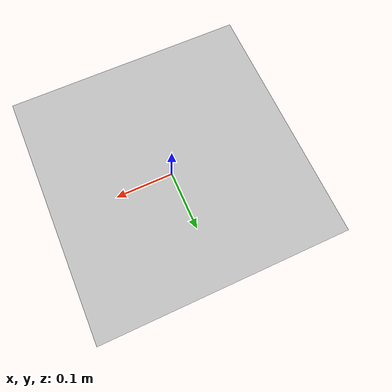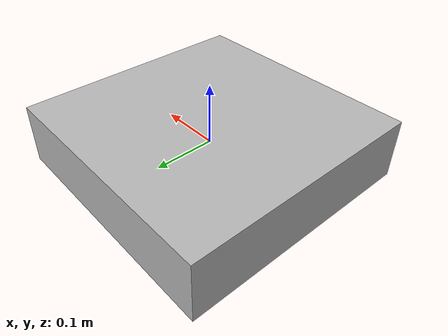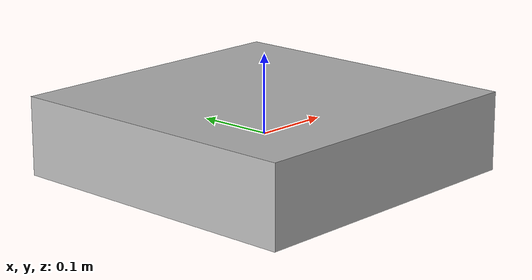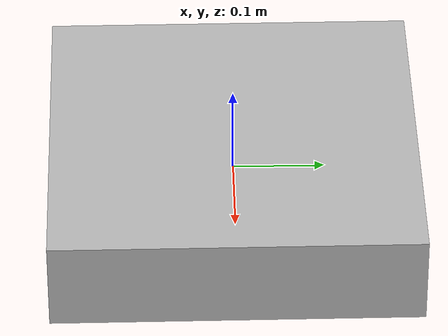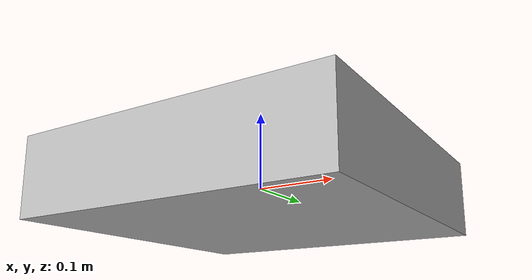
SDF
<?xml version="1.0"?>
<sdf version="1.9">
  <model name="quadcopter">
    <static>true</static>

    <!-- BASE -->
    <link name="base_link">
      <pose>0 0 0 0 0 0</pose>

      <inertial>
        <mass>1.5</mass>
        <inertia>
          <ixx>0.02</ixx>
          <iyy>0.02</iyy>
          <izz>0.04</izz>
        </inertia>
      </inertial>

      <collision name="collision">
        <geometry>
          <box><size>0.4 0.4 0.1</size></box>
        </geometry>
      </collision>

      <visual name="visual">
        <geometry>
          <box><size>0.4 0.4 0.1</size></box>
        </geometry>
      </visual>

      <!-- IMU -->
      <sensor name="imu" type="imu">
        <always_on>true</always_on>
        <update_rate>200</update_rate>
      </sensor>
    </link>

    <!-- ROTORS -->
    <link name="rotor_0">
      <inertial>
        <mass>0.01</mass>
        <inertia>
          <ixx>1e-6</ixx>
          <iyy>1e-6</iyy>
          <izz>1e-6</izz>
        </inertia>
      </inertial>
    </link>

    <link name="rotor_1">
      <inertial>
        <mass>0.01</mass>
        <inertia>
          <ixx>1e-6</ixx>
          <iyy>1e-6</iyy>
          <izz>1e-6</izz>
        </inertia>
      </inertial>
    </link>

    <link name="rotor_2">
      <inertial>
        <mass>0.01</mass>
        <inertia>
          <ixx>1e-6</ixx>
          <iyy>1e-6</iyy>
          <izz>1e-6</izz>
        </inertia>
      </inertial>
    </link>

    <link name="rotor_3">
      <inertial>
        <mass>0.01</mass>
        <inertia>
          <ixx>1e-6</ixx>
          <iyy>1e-6</iyy>
          <izz>1e-6</izz>
        </inertia>
      </inertial>
    </link>

    <joint name="rotor_0_joint" type="revolute">
      <parent>base_link</parent>
      <child>rotor_0</child>
      <pose>0.2  0.2 0 0 0 0</pose>
      <axis>
        <xyz>0 0 1</xyz>
        <limit>
          <lower>-1e16</lower>
          <upper>1e16</upper>
        </limit>
      </axis>
    </joint>

    <joint name="rotor_1_joint" type="revolute">
      <parent>base_link</parent>
      <child>rotor_1</child>
      <pose>-0.2  0.2 0 0 0 0</pose>
      <axis>
        <xyz>0 0 1</xyz>
        <limit>
          <lower>-1e16</lower>
          <upper>1e16</upper>
        </limit>
      </axis>
    </joint>

    <joint name="rotor_2_joint" type="revolute">
      <parent>base_link</parent>
      <child>rotor_2</child>
      <pose>-0.2 -0.2 0 0 0 0</pose>
      <axis>
        <xyz>0 0 1</xyz>
        <limit>
          <lower>-1e16</lower>
          <upper>1e16</upper>
        </limit>
      </axis>
    </joint>

    <joint name="rotor_3_joint" type="revolute">
      <parent>base_link</parent>
      <child>rotor_3</child>
      <pose>0.2 -0.2 0 0 0 0</pose>
      <axis>
        <xyz>0 0 1</xyz>
        <limit>
          <lower>-1e16</lower>
          <upper>1e16</upper>
        </limit>
      </axis>
    </joint>

    <!-- MOTOR 0 -->
    <plugin filename="gz-sim-multicopter-motor-model-system"
            name="gz::sim::systems::MulticopterMotorModel">
      <robotNamespace>quadcopter</robotNamespace>
      <jointName>rotor_0_joint</jointName>
      <linkName>rotor_0</linkName>
      <turningDirection>ccw</turningDirection>
      <actuator_number>0</actuator_number>
      <commandSubTopic>command/motor_speed</commandSubTopic>
      <motorType>velocity</motorType>
    </plugin>

    <!-- MOTOR 1 -->
    <plugin filename="gz-sim-multicopter-motor-model-system"
            name="gz::sim::systems::MulticopterMotorModel">
      <robotNamespace>quadcopter</robotNamespace>
      <jointName>rotor_1_joint</jointName>
      <linkName>rotor_1</linkName>
      <turningDirection>cw</turningDirection>
      <actuator_number>1</actuator_number>
      <commandSubTopic>command/motor_speed</commandSubTopic>
      <motorType>velocity</motorType>
    </plugin>

    <!-- MOTOR 2 -->
    <plugin filename="gz-sim-multicopter-motor-model-system"
            name="gz::sim::systems::MulticopterMotorModel">
      <robotNamespace>quadcopter</robotNamespace>
      <jointName>rotor_2_joint</jointName>
      <linkName>rotor_2</linkName>
      <turningDirection>ccw</turningDirection>
      <actuator_number>2</actuator_number>
      <commandSubTopic>command/motor_speed</commandSubTopic>
      <motorType>velocity</motorType>
    </plugin>

    <!-- MOTOR 3 -->
    <plugin filename="gz-sim-multicopter-motor-model-system"
            name="gz::sim::systems::MulticopterMotorModel">
      <robotNamespace>quadcopter</robotNamespace>
      <jointName>rotor_3_joint</jointName>
      <linkName>rotor_3</linkName>
      <turningDirection>cw</turningDirection>
      <actuator_number>3</actuator_number>
      <commandSubTopic>command/motor_speed</commandSubTopic>
      <motorType>velocity</motorType>
    </plugin>

    <!-- SENSOR SYSTEM -->
    <plugin filename="gz-sim-sensors-system"
            name="gz::sim::systems::Sensors"/>
  </model>
</sdf>
